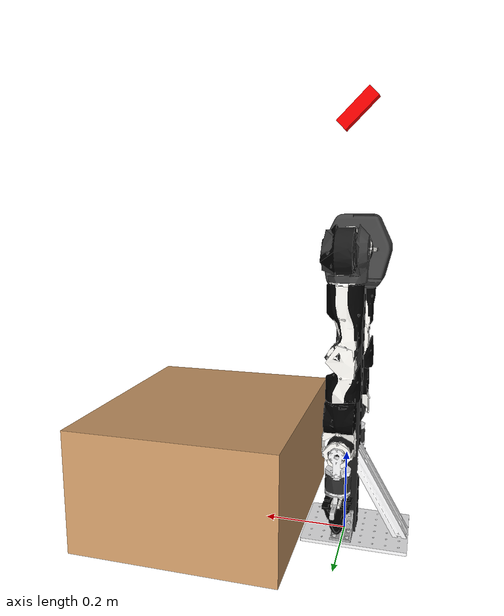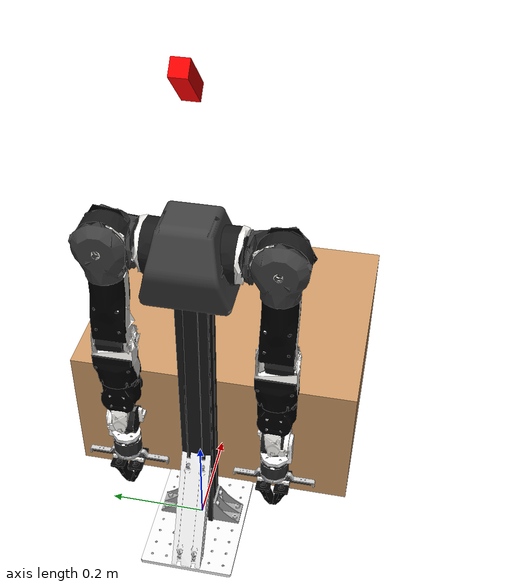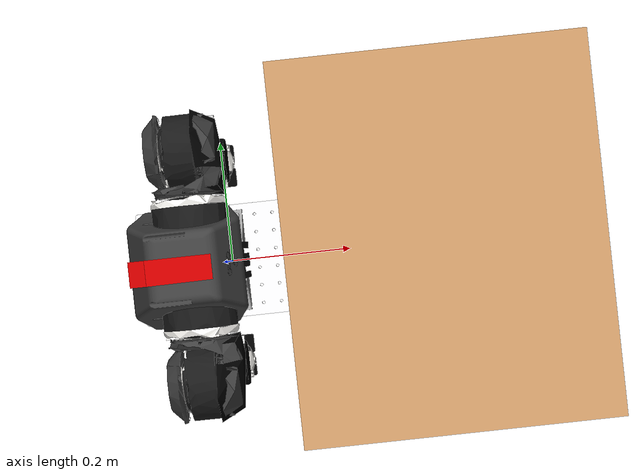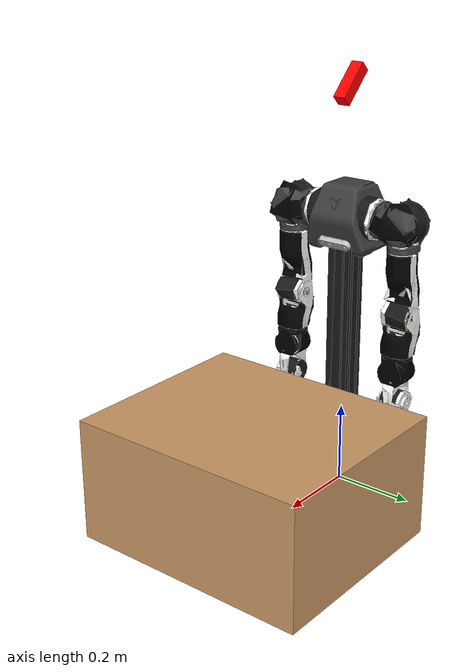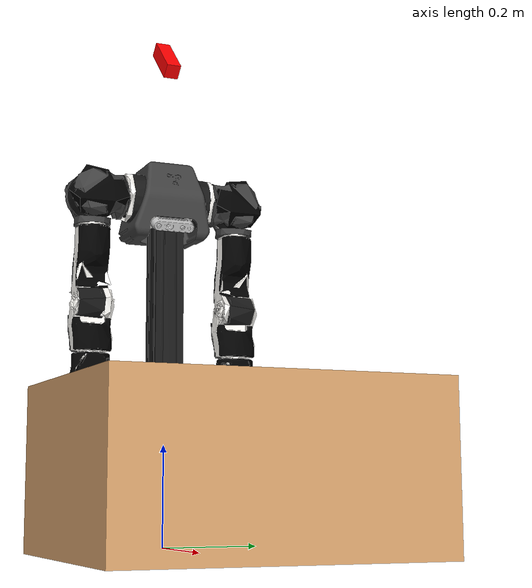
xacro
<?xml version="1.0"?>

<robot xmlns:xacro="http://www.ros.org/wiki/xacro" name="openarm">
    <!-- 1. 定义参数，防止宏调用时找不到参数报错 -->
    <xacro:arg name="initial_positions_file" default="initial_positions.yaml" />
    <!-- Import openarm urdf file -->
    <xacro:include filename="mujoco_openarm_bimanual_cam.urdf" />

    <!-- Import control_xacro -->
    <!-- 注意：这里包含了你定义的那个文件 -->
    <xacro:include filename="mujoco_ros2_control_position.xacro" />

    <link name="overhead_camera_link">
        <visual>
            <geometry>
                <box size="0.1 0.03 0.03"/>
            </geometry>
            <material name="black">
                <color rgba="255 0 0 1"/>
            </material>
        </visual>
        <collision>
            <geometry>
                <box size="0.1 0.03 0.03"/>
            </geometry>
        </collision>
    </link>

    <joint name="overhead_camera_joint" type="fixed">
        <parent link="world"/>
        <child link="overhead_camera_link"/>
        <!-- Position: 0.4m forward, 0.8m up. Facing down. -->
        <origin xyz="0 0 1.0" rpy="0 0.785 0"/>
    </joint>

    <mujoco>
        <sensor>
            <camera name="overhead_camera" mode="fixed" fovy="60" />
        </sensor>
    </mujoco>

    <!-- 2. 关键修复：显式调用宏 -->
    <!-- 宏的名字必须与 mujoco_ros2_control.xacro 中定义的 xacro:macro name="..." 一致 -->
    <!-- 定义是: openarm_mujoco_ros2_control -->
    <xacro:openarm_mujoco_ros2_control name="MujocoSystem" initial_positions_file="$(arg initial_positions_file)"/>

</robot>

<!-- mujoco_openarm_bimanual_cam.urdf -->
<!-- |    This document was autogenerated by xacro from ./urdf/robot/v10-D435.urdf.xacro | -->
<!-- |    EDITING THIS FILE BY HAND IS NOT RECOMMENDED                                 | -->
<robot name="openarm">
  <!-- 包含RealSense D435i的URDF模型（从realsense2_description包中） -->
  <!-- Is the robot being simulated in gazebo? -->
  <link name="world"/>
  <joint name="openarm_body_world_joint" type="fixed">
    <parent link="world"/>
    <child link="openarm_body_link0"/>
    <origin rpy="0 0 0" xyz="0 0 0"/>
  </joint>
  <link name="openarm_body_link0">
    <visual name="openarm_body_link0_visual">
      <origin rpy="0.0 0.0 0.0" xyz="0.0 0.0 0.0"/>
      <geometry>
        <mesh filename="package://openarm_description/meshes/body/v10/visual/body_link0.dae" scale="0.001 0.001 0.001"/>
      </geometry>
    </visual>
    <collision name="openarm_body_link0_collision">
      <origin rpy="0.0 0.0 0.0" xyz="0.0 0.0 0.0"/>
      <geometry>
        <mesh filename="package://openarm_description/meshes/body/v10/collision/body_link0_symp.stl" scale="0.001 0.001 0.001"/>
      </geometry>
    </collision>
    <inertial>
      <origin rpy="0.0 0.0 0.0" xyz="0.0 0.0 0.0"/>
      <mass value="13.89"/>
      <inertia ixx="1.653" ixy="0.0" ixz="0.0" iyy="1.653" iyz="0.0" izz="0.051"/>
    </inertial>
  </link>
  <joint name="openarm_left_openarm_body_link0_joint" type="fixed">
    <parent link="openarm_body_link0"/>
    <child link="openarm_left_link0"/>
    <origin rpy="-1.5708 0 0" xyz="0.0 0.031 0.698"/>
  </joint>
  <link name="openarm_left_link0">
    <visual name="openarm_left_link0_visual">
      <origin rpy="0.0 0.0 0.0" xyz="0.0 0.0 0.0"/>
      <geometry>
        <mesh filename="package://openarm_description/meshes/arm/v10/visual/link0.dae" scale="0.001 -0.001 0.001"/>
      </geometry>
    </visual>
    <collision name="openarm_left_link0_collision">
      <origin rpy="0.0 0.0 0.0" xyz="0.0 0.0 0.0"/>
      <geometry>
        <mesh filename="package://openarm_description/meshes/arm/v10/collision/link0_symp.stl" scale="0.001 -0.001 0.001"/>
      </geometry>
    </collision>
    <inertial>
      <origin rpy="0.0 0.0 0.0" xyz="-0.0009483362816297526 -0.0001580207020448382 0.03076860287587199"/>
      <mass value="1.1432284943239561"/>
      <inertia ixx="0.001128" ixy="-4e-06" ixz="-3.3e-05" iyy="0.000962" iyz="-7e-06" izz="0.00147"/>
    </inertial>
  </link>
  <link name="openarm_left_link1">
    <visual name="openarm_left_link1_visual">
      <origin rpy="0.0 0.0 0.0" xyz="-0.0 0.0 -0.0625"/>
      <geometry>
        <mesh filename="package://openarm_description/meshes/arm/v10/visual/link1.dae" scale="0.001 -0.001 0.001"/>
      </geometry>
    </visual>
    <collision name="openarm_left_link1_collision">
      <origin rpy="0.0 0.0 0.0" xyz="-0.0 0.0 -0.0625"/>
      <geometry>
        <mesh filename="package://openarm_description/meshes/arm/v10/collision/link1_symp.stl" scale="0.001 -0.001 0.001"/>
      </geometry>
    </collision>
    <inertial>
      <origin rpy="0.0 0.0 0.0" xyz="0.0011467657911800769 -3.319987657026362e-05 0.05395284380736254"/>
      <mass value="1.1416684646202298"/>
      <inertia ixx="0.001567" ixy="-1e-06" ixz="-2.9e-05" iyy="0.001273" iyz="1e-06" izz="0.001016"/>
    </inertial>
  </link>
  <joint name="openarm_left_joint1" type="revolute">
    <origin rpy="0 0 0" xyz="0.0 0.0 0.0625"/>
    <parent link="openarm_left_link0"/>
    <child link="openarm_left_link1"/>
    <axis xyz="0 0 1"/>
    <limit effort="40" lower="-3.490659" upper="1.3962629999999998" velocity="16.754666"/>
  </joint>
  <link name="openarm_left_link2">
    <visual name="openarm_left_link2_visual">
      <origin rpy="0.0 0.0 0.0" xyz="0.0301 0.0 -0.1225"/>
      <geometry>
        <mesh filename="package://openarm_description/meshes/arm/v10/visual/link2.dae" scale="0.001 -0.001 0.001"/>
      </geometry>
    </visual>
    <collision name="openarm_left_link2_collision">
      <origin rpy="0.0 0.0 0.0" xyz="0.0301 0.0 -0.1225"/>
      <geometry>
        <mesh filename="package://openarm_description/meshes/arm/v10/collision/link2_symp.stl" scale="0.001 -0.001 0.001"/>
      </geometry>
    </collision>
    <inertial>
      <origin rpy="0.0 0.0 0.0" xyz="0.00839629182351943 2.0145102027597523e-08 0.03256649300522363"/>
      <mass value="0.2775092746011571"/>
      <inertia ixx="0.000359" ixy="1e-06" ixz="-0.000109" iyy="0.000376" iyz="1e-06" izz="0.000232"/>
    </inertial>
  </link>
  <joint name="openarm_left_joint2" type="revolute">
    <origin rpy="-1.57079632679 0 0" xyz="-0.0301 0.0 0.06"/>
    <parent link="openarm_left_link1"/>
    <child link="openarm_left_link2"/>
    <axis xyz="-1 0 0"/>
    <limit effort="40" lower="-3.3161253267948965" upper="0.17453267320510335" velocity="16.754666"/>
  </joint>
  <link name="openarm_left_link3">
    <visual name="openarm_left_link3_visual">
      <origin rpy="0.0 0.0 0.0" xyz="-0.0 -0.0 -0.18875"/>
      <geometry>
        <mesh filename="package://openarm_description/meshes/arm/v10/visual/link3.dae" scale="0.001 -0.001 0.001"/>
      </geometry>
    </visual>
    <collision name="openarm_left_link3_collision">
      <origin rpy="0.0 0.0 0.0" xyz="-0.0 -0.0 -0.18875"/>
      <geometry>
        <mesh filename="package://openarm_description/meshes/arm/v10/collision/link3_symp.stl" scale="0.001 -0.001 0.001"/>
      </geometry>
    </collision>
    <inertial>
      <origin rpy="0.0 0.0 0.0" xyz="-0.002104752099628911 -0.0005549085042607548 0.09047470545721961"/>
      <mass value="1.073863338202347"/>
      <inertia ixx="0.004372" ixy="1e-06" ixz="1.1e-05" iyy="0.004319" iyz="-3.6e-05" izz="0.000661"/>
    </inertial>
  </link>
  <joint name="openarm_left_joint3" type="revolute">
    <origin rpy="0 0 0" xyz="0.0301 0.0 0.06625"/>
    <parent link="openarm_left_link2"/>
    <child link="openarm_left_link3"/>
    <axis xyz="0 0 1"/>
    <limit effort="27" lower="-1.570796" upper="1.570796" velocity="5.445426"/>
  </joint>
  <link name="openarm_left_link4">
    <visual name="openarm_left_link4_visual">
      <origin rpy="0.0 0.0 0.0" xyz="0.0 -0.0315 -0.3425"/>
      <geometry>
        <mesh filename="package://openarm_description/meshes/arm/v10/visual/link4.dae" scale="0.001 0.001 0.001"/>
      </geometry>
    </visual>
    <collision name="openarm_left_link4_collision">
      <origin rpy="0.0 0.0 0.0" xyz="0.0 -0.0315 -0.3425"/>
      <geometry>
        <mesh filename="package://openarm_description/meshes/arm/v10/collision/link4_symp.stl" scale="0.001 0.001 0.001"/>
      </geometry>
    </collision>
    <inertial>
      <origin rpy="0.0 0.0 0.0" xyz="-0.0029006831074562967 -0.03030575826634669 0.06339637422196209"/>
      <mass value="0.6348534566833373"/>
      <inertia ixx="0.000623" ixy="-1e-06" ixz="-1.9e-05" iyy="0.000511" iyz="3.8e-05" izz="0.000334"/>
    </inertial>
  </link>
  <joint name="openarm_left_joint4" type="revolute">
    <origin rpy="0 0 0" xyz="-0.0 0.0315 0.15375"/>
    <parent link="openarm_left_link3"/>
    <child link="openarm_left_link4"/>
    <axis xyz="0 1 0"/>
    <limit effort="27" lower="0.0" upper="2.443461" velocity="5.445426"/>
  </joint>
  <link name="openarm_left_link5">
    <visual name="openarm_left_link5_visual">
      <origin rpy="0.0 0.0 0.0" xyz="-0.0 -0.0 -0.438"/>
      <geometry>
        <mesh filename="package://openarm_description/meshes/arm/v10/visual/link5.dae" scale="0.001 -0.001 0.001"/>
      </geometry>
    </visual>
    <collision name="openarm_left_link5_collision">
      <origin rpy="0.0 0.0 0.0" xyz="-0.0 -0.0 -0.438"/>
      <geometry>
        <mesh filename="package://openarm_description/meshes/arm/v10/collision/link5_symp.stl" scale="0.001 -0.001 0.001"/>
      </geometry>
    </collision>
    <inertial>
      <origin rpy="0.0 0.0 0.0" xyz="-0.003049665024221911 -0.0008866902457326625 0.043079803024980934"/>
      <mass value="0.6156588026168502"/>
      <inertia ixx="0.000423" ixy="-8e-06" ixz="6e-06" iyy="0.000445" iyz="-6e-06" izz="0.000324"/>
    </inertial>
  </link>
  <joint name="openarm_left_joint5" type="revolute">
    <origin rpy="0 0 0" xyz="0.0 -0.0315 0.0955"/>
    <parent link="openarm_left_link4"/>
    <child link="openarm_left_link5"/>
    <axis xyz="0 0 1"/>
    <limit effort="7" lower="-1.570796" upper="1.570796" velocity="20.943946"/>
  </joint>
  <link name="openarm_left_link6">
    <visual name="openarm_left_link6_visual">
      <origin rpy="0.0 0.0 0.0" xyz="-0.0375 -0.0 -0.5585"/>
      <geometry>
        <mesh filename="package://openarm_description/meshes/arm/v10/visual/link6.dae" scale="0.001 -0.001 0.001"/>
      </geometry>
    </visual>
    <collision name="openarm_left_link6_collision">
      <origin rpy="0.0 0.0 0.0" xyz="-0.0375 -0.0 -0.5585"/>
      <geometry>
        <mesh filename="package://openarm_description/meshes/arm/v10/collision/link6_symp.stl" scale="0.001 -0.001 0.001"/>
      </geometry>
    </collision>
    <inertial>
      <origin rpy="0.0 0.0 0.0" xyz="-0.037136587005447405 -0.00033230528343419053 -9.498374522309838e-05"/>
      <mass value="0.475202773187987"/>
      <inertia ixx="0.000143" ixy="1e-06" ixz="1e-06" iyy="0.000157" iyz="1e-06" izz="0.000159"/>
    </inertial>
  </link>
  <joint name="openarm_left_joint6" type="revolute">
    <origin rpy="0 0 0" xyz="0.0375 0.0 0.1205"/>
    <parent link="openarm_left_link5"/>
    <child link="openarm_left_link6"/>
    <axis xyz="1 0 0"/>
    <limit effort="7" lower="-0.785398" upper="0.785398" velocity="20.943946"/>
  </joint>
  <link name="openarm_left_link7">
    <visual name="openarm_left_link7_visual">
      <origin rpy="0.0 0.0 0.0" xyz="0.0 -0.0 -0.5585"/>
      <geometry>
        <mesh filename="package://openarm_description/meshes/arm/v10/visual/link7.dae" scale="0.001 -0.001 0.001"/>
      </geometry>
    </visual>
    <collision name="openarm_left_link7_collision">
      <origin rpy="0.0 0.0 0.0" xyz="0.0 -0.0 -0.5585"/>
      <geometry>
        <mesh filename="package://openarm_description/meshes/arm/v10/collision/link7_symp.stl" scale="0.001 -0.001 0.001"/>
      </geometry>
    </collision>
    <inertial>
      <origin rpy="0.0 0.0 0.0" xyz="6.875510271106056e-05 -0.01266175250761268 0.06951945409987448"/>
      <mass value="0.4659771327380578"/>
      <inertia ixx="0.000639" ixy="1e-06" ixz="1e-06" iyy="0.000497" iyz="8.9e-05" izz="0.000342"/>
    </inertial>
  </link>
  <joint name="openarm_left_joint7" type="revolute">
    <origin rpy="0 0 0" xyz="-0.0375 0.0 0.0"/>
    <parent link="openarm_left_link6"/>
    <child link="openarm_left_link7"/>
    <axis xyz="0 -1 0"/>
    <limit effort="7" lower="-1.570796" upper="1.570796" velocity="20.943946"/>
  </joint>
  <joint name="openarm_right_openarm_body_link0_joint" type="fixed">
    <parent link="openarm_body_link0"/>
    <child link="openarm_right_link0"/>
    <origin rpy="1.5708 0 0" xyz="0.0 -0.031 0.698"/>
  </joint>
  <link name="openarm_right_link0">
    <visual name="openarm_right_link0_visual">
      <origin rpy="0.0 0.0 0.0" xyz="0.0 0.0 0.0"/>
      <geometry>
        <mesh filename="package://openarm_description/meshes/arm/v10/visual/link0.dae" scale="0.001 0.001 0.001"/>
      </geometry>
    </visual>
    <collision name="openarm_right_link0_collision">
      <origin rpy="0.0 0.0 0.0" xyz="0.0 0.0 0.0"/>
      <geometry>
        <mesh filename="package://openarm_description/meshes/arm/v10/collision/link0_symp.stl" scale="0.001 0.001 0.001"/>
      </geometry>
    </collision>
    <inertial>
      <origin rpy="0.0 0.0 0.0" xyz="-0.0009483362816297526 0.0001580207020448382 0.03076860287587199"/>
      <mass value="1.1432284943239561"/>
      <inertia ixx="0.001128" ixy="-4e-06" ixz="-3.3e-05" iyy="0.000962" iyz="-7e-06" izz="0.00147"/>
    </inertial>
  </link>
  <link name="openarm_right_link1">
    <visual name="openarm_right_link1_visual">
      <origin rpy="0.0 0.0 0.0" xyz="-0.0 0.0 -0.0625"/>
      <geometry>
        <mesh filename="package://openarm_description/meshes/arm/v10/visual/link1.dae" scale="0.001 0.001 0.001"/>
      </geometry>
    </visual>
    <collision name="openarm_right_link1_collision">
      <origin rpy="0.0 0.0 0.0" xyz="-0.0 0.0 -0.0625"/>
      <geometry>
        <mesh filename="package://openarm_description/meshes/arm/v10/collision/link1_symp.stl" scale="0.001 0.001 0.001"/>
      </geometry>
    </collision>
    <inertial>
      <origin rpy="0.0 0.0 0.0" xyz="0.0011467657911800769 3.319987657026362e-05 0.05395284380736254"/>
      <mass value="1.1416684646202298"/>
      <inertia ixx="0.001567" ixy="-1e-06" ixz="-2.9e-05" iyy="0.001273" iyz="1e-06" izz="0.001016"/>
    </inertial>
  </link>
  <joint name="openarm_right_joint1" type="revolute">
    <origin rpy="0 0 0" xyz="0.0 0.0 0.0625"/>
    <parent link="openarm_right_link0"/>
    <child link="openarm_right_link1"/>
    <axis xyz="0 0 1"/>
    <limit effort="40" lower="-1.396263" upper="3.490659" velocity="16.754666"/>
  </joint>
  <link name="openarm_right_link2">
    <visual name="openarm_right_link2_visual">
      <origin rpy="0.0 0.0 0.0" xyz="0.0301 0.0 -0.1225"/>
      <geometry>
        <mesh filename="package://openarm_description/meshes/arm/v10/visual/link2.dae" scale="0.001 0.001 0.001"/>
      </geometry>
    </visual>
    <collision name="openarm_right_link2_collision">
      <origin rpy="0.0 0.0 0.0" xyz="0.0301 0.0 -0.1225"/>
      <geometry>
        <mesh filename="package://openarm_description/meshes/arm/v10/collision/link2_symp.stl" scale="0.001 0.001 0.001"/>
      </geometry>
    </collision>
    <inertial>
      <origin rpy="0.0 0.0 0.0" xyz="0.00839629182351943 -2.0145102027597523e-08 0.03256649300522363"/>
      <mass value="0.2775092746011571"/>
      <inertia ixx="0.000359" ixy="1e-06" ixz="-0.000109" iyy="0.000376" iyz="1e-06" izz="0.000232"/>
    </inertial>
  </link>
  <joint name="openarm_right_joint2" type="revolute">
    <origin rpy="1.57079632679 0 0" xyz="-0.0301 0.0 0.06"/>
    <parent link="openarm_right_link1"/>
    <child link="openarm_right_link2"/>
    <axis xyz="-1 0 0"/>
    <limit effort="40" lower="-0.17453267320510335" upper="3.3161253267948965" velocity="16.754666"/>
  </joint>
  <link name="openarm_right_link3">
    <visual name="openarm_right_link3_visual">
      <origin rpy="0.0 0.0 0.0" xyz="-0.0 -0.0 -0.18875"/>
      <geometry>
        <mesh filename="package://openarm_description/meshes/arm/v10/visual/link3.dae" scale="0.001 0.001 0.001"/>
      </geometry>
    </visual>
    <collision name="openarm_right_link3_collision">
      <origin rpy="0.0 0.0 0.0" xyz="-0.0 -0.0 -0.18875"/>
      <geometry>
        <mesh filename="package://openarm_description/meshes/arm/v10/collision/link3_symp.stl" scale="0.001 0.001 0.001"/>
      </geometry>
    </collision>
    <inertial>
      <origin rpy="0.0 0.0 0.0" xyz="-0.002104752099628911 0.0005549085042607548 0.09047470545721961"/>
      <mass value="1.073863338202347"/>
      <inertia ixx="0.004372" ixy="1e-06" ixz="1.1e-05" iyy="0.004319" iyz="-3.6e-05" izz="0.000661"/>
    </inertial>
  </link>
  <joint name="openarm_right_joint3" type="revolute">
    <origin rpy="0 0 0" xyz="0.0301 0.0 0.06625"/>
    <parent link="openarm_right_link2"/>
    <child link="openarm_right_link3"/>
    <axis xyz="0 0 1"/>
    <limit effort="27" lower="-1.570796" upper="1.570796" velocity="5.445426"/>
  </joint>
  <link name="openarm_right_link4">
    <visual name="openarm_right_link4_visual">
      <origin rpy="0.0 0.0 0.0" xyz="0.0 -0.0315 -0.3425"/>
      <geometry>
        <mesh filename="package://openarm_description/meshes/arm/v10/visual/link4.dae" scale="0.001 0.001 0.001"/>
      </geometry>
    </visual>
    <collision name="openarm_right_link4_collision">
      <origin rpy="0.0 0.0 0.0" xyz="0.0 -0.0315 -0.3425"/>
      <geometry>
        <mesh filename="package://openarm_description/meshes/arm/v10/collision/link4_symp.stl" scale="0.001 0.001 0.001"/>
      </geometry>
    </collision>
    <inertial>
      <origin rpy="0.0 0.0 0.0" xyz="-0.0029006831074562967 -0.03030575826634669 0.06339637422196209"/>
      <mass value="0.6348534566833373"/>
      <inertia ixx="0.000623" ixy="-1e-06" ixz="-1.9e-05" iyy="0.000511" iyz="3.8e-05" izz="0.000334"/>
    </inertial>
  </link>
  <joint name="openarm_right_joint4" type="revolute">
    <origin rpy="0 0 0" xyz="-0.0 0.0315 0.15375"/>
    <parent link="openarm_right_link3"/>
    <child link="openarm_right_link4"/>
    <axis xyz="0 1 0"/>
    <limit effort="27" lower="0.0" upper="2.443461" velocity="5.445426"/>
  </joint>
  <link name="openarm_right_link5">
    <visual name="openarm_right_link5_visual">
      <origin rpy="0.0 0.0 0.0" xyz="-0.0 -0.0 -0.438"/>
      <geometry>
        <mesh filename="package://openarm_description/meshes/arm/v10/visual/link5.dae" scale="0.001 0.001 0.001"/>
      </geometry>
    </visual>
    <collision name="openarm_right_link5_collision">
      <origin rpy="0.0 0.0 0.0" xyz="-0.0 -0.0 -0.438"/>
      <geometry>
        <mesh filename="package://openarm_description/meshes/arm/v10/collision/link5_symp.stl" scale="0.001 0.001 0.001"/>
      </geometry>
    </collision>
    <inertial>
      <origin rpy="0.0 0.0 0.0" xyz="-0.003049665024221911 0.0008866902457326625 0.043079803024980934"/>
      <mass value="0.6156588026168502"/>
      <inertia ixx="0.000423" ixy="-8e-06" ixz="6e-06" iyy="0.000445" iyz="-6e-06" izz="0.000324"/>
    </inertial>
  </link>
  <joint name="openarm_right_joint5" type="revolute">
    <origin rpy="0 0 0" xyz="0.0 -0.0315 0.0955"/>
    <parent link="openarm_right_link4"/>
    <child link="openarm_right_link5"/>
    <axis xyz="0 0 1"/>
    <limit effort="7" lower="-1.570796" upper="1.570796" velocity="20.943946"/>
  </joint>
  <link name="openarm_right_link6">
    <visual name="openarm_right_link6_visual">
      <origin rpy="0.0 0.0 0.0" xyz="-0.0375 -0.0 -0.5585"/>
      <geometry>
        <mesh filename="package://openarm_description/meshes/arm/v10/visual/link6.dae" scale="0.001 0.001 0.001"/>
      </geometry>
    </visual>
    <collision name="openarm_right_link6_collision">
      <origin rpy="0.0 0.0 0.0" xyz="-0.0375 -0.0 -0.5585"/>
      <geometry>
        <mesh filename="package://openarm_description/meshes/arm/v10/collision/link6_symp.stl" scale="0.001 0.001 0.001"/>
      </geometry>
    </collision>
    <inertial>
      <origin rpy="0.0 0.0 0.0" xyz="-0.037136587005447405 0.00033230528343419053 -9.498374522309838e-05"/>
      <mass value="0.475202773187987"/>
      <inertia ixx="0.000143" ixy="1e-06" ixz="1e-06" iyy="0.000157" iyz="1e-06" izz="0.000159"/>
    </inertial>
  </link>
  <joint name="openarm_right_joint6" type="revolute">
    <origin rpy="0 0 0" xyz="0.0375 0.0 0.1205"/>
    <parent link="openarm_right_link5"/>
    <child link="openarm_right_link6"/>
    <axis xyz="1 0 0"/>
    <limit effort="7" lower="-0.785398" upper="0.785398" velocity="20.943946"/>
  </joint>
  <link name="openarm_right_link7">
    <visual name="openarm_right_link7_visual">
      <origin rpy="0.0 0.0 0.0" xyz="0.0 -0.0 -0.5585"/>
      <geometry>
        <mesh filename="package://openarm_description/meshes/arm/v10/visual/link7.dae" scale="0.001 0.001 0.001"/>
      </geometry>
    </visual>
    <collision name="openarm_right_link7_collision">
      <origin rpy="0.0 0.0 0.0" xyz="0.0 -0.0 -0.5585"/>
      <geometry>
        <mesh filename="package://openarm_description/meshes/arm/v10/collision/link7_symp.stl" scale="0.001 0.001 0.001"/>
      </geometry>
    </collision>
    <inertial>
      <origin rpy="0.0 0.0 0.0" xyz="6.875510271106056e-05 0.01266175250761268 0.06951945409987448"/>
      <mass value="0.4659771327380578"/>
      <inertia ixx="0.000639" ixy="1e-06" ixz="1e-06" iyy="0.000497" iyz="8.9e-05" izz="0.000342"/>
    </inertial>
  </link>
  <joint name="openarm_right_joint7" type="revolute">
    <origin rpy="0 0 0" xyz="-0.0375 0.0 0.0"/>
    <parent link="openarm_right_link6"/>
    <child link="openarm_right_link7"/>
    <axis xyz="0 1 0"/>
    <limit effort="7" lower="-1.570796" upper="1.570796" velocity="20.943946"/>
  </joint>
  <link name="openarm_left_hand">
    <visual name="openarm_left_hand_visual">
      <origin rpy="0.0 0.0 0.0" xyz="0.0 0.0 -0.6585"/>
      <geometry>
        <mesh filename="package://openarm_description/meshes/ee/openarm_hand/visual/hand.dae" scale="0.001 0.001 0.001"/>
      </geometry>
    </visual>
    <collision name="openarm_left_hand_collision">
      <origin rpy="0.0 0.0 0.0" xyz="0.0 0.0 -0.6585"/>
      <geometry>
        <mesh filename="package://openarm_description/meshes/ee/openarm_hand/collision/hand.stl" scale="0.001 0.001 0.001"/>
      </geometry>
    </collision>
    <inertial>
      <origin rpy="0 0 0" xyz="0.0 0.002 0.03"/>
      <mass value="0.35"/>
      <inertia ixx="0.0002473" ixy="1e-06" ixz="1e-06" iyy="1.763e-05" iyz="1e-06" izz="0.0002521"/>
    </inertial>
  </link>
  <joint name="left_openarm_hand_joint" type="fixed">
    <parent link="openarm_left_link7"/>
    <child link="openarm_left_hand"/>
    <origin rpy="0 0 0" xyz="0 -0.0 0.1001"/>
  </joint>
  <!-- Define the hand_tcp frame -->
  <link name="openarm_left_hand_tcp"/>
  <joint name="openarm_left_hand_tcp_joint" type="fixed">
    <origin rpy="0 0 0" xyz="0 -0.0 0.08"/>
    <parent link="openarm_left_hand"/>
    <child link="openarm_left_hand_tcp"/>
  </joint>
  <link name="openarm_left_left_finger">
    <visual name="openarm_left_left_finger_visual">
      <origin rpy="0.0 0.0 0.0" xyz="0.0 -0.05 -0.673001"/>
      <geometry>
        <mesh filename="package://openarm_description/meshes/ee/openarm_hand/visual/finger.dae" scale="0.001 0.001 0.001"/>
      </geometry>
    </visual>
    <collision name="openarm_left_left_finger_collision">
      <origin rpy="0.0 0.0 0.0" xyz="0.0 -0.05 -0.673001"/>
      <geometry>
        <mesh filename="package://openarm_description/meshes/ee/openarm_hand/collision/finger.stl" scale="0.001 0.001 0.001"/>
      </geometry>
    </collision>
    <inertial>
      <origin rpy="0 0 0" xyz="0.0064528 0.01702 0.0219685"/>
      <mass value="0.03602545343277134"/>
      <inertia ixx="2.3749999999999998e-05" ixy="0.0" ixz="0.0" iyy="2.3749999999999998e-05" iyz="0.0" izz="7.5e-06"/>
    </inertial>
  </link>
  <link name="openarm_left_right_finger">
    <visual name="openarm_left_right_finger_visual">
      <origin rpy="0.0 0.0 0.0" xyz="0.0 0.05 -0.673001"/>
      <geometry>
        <mesh filename="package://openarm_description/meshes/ee/openarm_hand/visual/finger.dae" scale="0.001 -0.001 0.001"/>
      </geometry>
    </visual>
    <collision name="openarm_left_right_finger_collision">
      <origin rpy="0.0 0.0 0.0" xyz="0.0 0.05 -0.673001"/>
      <geometry>
        <mesh filename="package://openarm_description/meshes/ee/openarm_hand/collision/finger.stl" scale="0.001 -0.001 0.001"/>
      </geometry>
    </collision>
    <inertial>
      <origin rpy="0 0 0" xyz="0.0064528 -0.01702 0.0219685"/>
      <mass value="0.03602545343277134"/>
      <inertia ixx="2.3749999999999998e-05" ixy="0.0" ixz="0.0" iyy="2.3749999999999998e-05" iyz="0.0" izz="7.5e-06"/>
    </inertial>
  </link>
  <joint name="openarm_left_finger_joint1" type="prismatic">
    <parent link="openarm_left_hand"/>
    <child link="openarm_left_right_finger"/>
    <origin rpy="0 0 0" xyz="0 -0.006 0.015"/>
    <axis xyz="0 -1 0"/>
    <limit effort="333" lower="0.0" upper="0.044" velocity="10.0"/>
  </joint>
  <joint name="openarm_left_finger_joint2" type="prismatic">
    <parent link="openarm_left_hand"/>
    <child link="openarm_left_left_finger"/>
    <origin rpy="0 0 0" xyz="0 0.006 0.015"/>
    <axis xyz="0 1 0"/>
    <limit effort="333" lower="0.0" upper="0.044" velocity="10.0"/>
    <mimic joint="openarm_left_finger_joint1"/>
  </joint>
  <link name="openarm_right_hand">
    <visual name="openarm_right_hand_visual">
      <origin rpy="0.0 0.0 0.0" xyz="0.0 0.0 -0.6585"/>
      <geometry>
        <mesh filename="package://openarm_description/meshes/ee/openarm_hand/visual/hand.dae" scale="0.001 0.001 0.001"/>
      </geometry>
    </visual>
    <collision name="openarm_right_hand_collision">
      <origin rpy="0.0 0.0 0.0" xyz="0.0 0.0 -0.6585"/>
      <geometry>
        <mesh filename="package://openarm_description/meshes/ee/openarm_hand/collision/hand.stl" scale="0.001 0.001 0.001"/>
      </geometry>
    </collision>
    <inertial>
      <origin rpy="0 0 0" xyz="0.0 0.002 0.03"/>
      <mass value="0.35"/>
      <inertia ixx="0.0002473" ixy="1e-06" ixz="1e-06" iyy="1.763e-05" iyz="1e-06" izz="0.0002521"/>
    </inertial>
  </link>
  <joint name="right_openarm_hand_joint" type="fixed">
    <parent link="openarm_right_link7"/>
    <child link="openarm_right_hand"/>
    <origin rpy="0 0 0" xyz="0 -0.0 0.1001"/>
  </joint>
  <!-- Define the hand_tcp frame -->
  <link name="openarm_right_hand_tcp"/>
  <joint name="openarm_right_hand_tcp_joint" type="fixed">
    <origin rpy="0 0 0" xyz="0 -0.0 0.08"/>
    <parent link="openarm_right_hand"/>
    <child link="openarm_right_hand_tcp"/>
  </joint>
  <link name="openarm_right_left_finger">
    <visual name="openarm_right_left_finger_visual">
      <origin rpy="0.0 0.0 0.0" xyz="0.0 -0.05 -0.673001"/>
      <geometry>
        <mesh filename="package://openarm_description/meshes/ee/openarm_hand/visual/finger.dae" scale="0.001 0.001 0.001"/>
      </geometry>
    </visual>
    <collision name="openarm_right_left_finger_collision">
      <origin rpy="0.0 0.0 0.0" xyz="0.0 -0.05 -0.673001"/>
      <geometry>
        <mesh filename="package://openarm_description/meshes/ee/openarm_hand/collision/finger.stl" scale="0.001 0.001 0.001"/>
      </geometry>
    </collision>
    <inertial>
      <origin rpy="0 0 0" xyz="0.0064528 0.01702 0.0219685"/>
      <mass value="0.03602545343277134"/>
      <inertia ixx="2.3749999999999998e-05" ixy="0.0" ixz="0.0" iyy="2.3749999999999998e-05" iyz="0.0" izz="7.5e-06"/>
    </inertial>
  </link>
  <link name="openarm_right_right_finger">
    <visual name="openarm_right_right_finger_visual">
      <origin rpy="0.0 0.0 0.0" xyz="0.0 0.05 -0.673001"/>
      <geometry>
        <mesh filename="package://openarm_description/meshes/ee/openarm_hand/visual/finger.dae" scale="0.001 -0.001 0.001"/>
      </geometry>
    </visual>
    <collision name="openarm_right_right_finger_collision">
      <origin rpy="0.0 0.0 0.0" xyz="0.0 0.05 -0.673001"/>
      <geometry>
        <mesh filename="package://openarm_description/meshes/ee/openarm_hand/collision/finger.stl" scale="0.001 -0.001 0.001"/>
      </geometry>
    </collision>
    <inertial>
      <origin rpy="0 0 0" xyz="0.0064528 -0.01702 0.0219685"/>
      <mass value="0.03602545343277134"/>
      <inertia ixx="2.3749999999999998e-05" ixy="0.0" ixz="0.0" iyy="2.3749999999999998e-05" iyz="0.0" izz="7.5e-06"/>
    </inertial>
  </link>
  <joint name="openarm_right_finger_joint1" type="prismatic">
    <parent link="openarm_right_hand"/>
    <child link="openarm_right_right_finger"/>
    <origin rpy="0 0 0" xyz="0 -0.006 0.015"/>
    <axis xyz="0 -1 0"/>
    <limit effort="333" lower="0.0" upper="0.044" velocity="10.0"/>
  </joint>
  <joint name="openarm_right_finger_joint2" type="prismatic">
    <parent link="openarm_right_hand"/>
    <child link="openarm_right_left_finger"/>
    <origin rpy="0 0 0" xyz="0 0.006 0.015"/>
    <axis xyz="0 1 0"/>
    <limit effort="333" lower="0.0" upper="0.044" velocity="10.0"/>
    <mimic joint="openarm_right_finger_joint1"/>
  </joint>
  <material name="aluminum">
    <color rgba="0.5 0.5 0.5 1"/>
  </material>
  <material name="plastic">
    <color rgba="0.1 0.1 0.1 1"/>
  </material>
  <!-- camera body, with origin at bottom screw mount -->
  <joint name="camera_joint" type="fixed">
    <origin rpy="0 0.5235988 0" xyz="0.035 0 0.63"/>
    <parent link="openarm_body_link0"/>
    <child link="camera_bottom_screw_frame"/>
  </joint>
  <link name="camera_bottom_screw_frame"/>
  <joint name="camera_link_joint" type="fixed">
    <origin rpy="0 0 0" xyz="0.010600000000000002 0.0175 0.0125"/>
    <parent link="camera_bottom_screw_frame"/>
    <child link="camera_link"/>
  </joint>
  <link name="camera_link">
    <visual>
      <!-- the mesh origin is at front plate in between the two infrared camera axes -->
      <origin rpy="1.5707963267948966 0 1.5707963267948966" xyz="0.0043 -0.0175 0"/>
      <geometry>
        <mesh filename="package://openarm_description/meshes/cam/d435.dae"/>
      </geometry>
    </visual>
    <collision>
      <origin rpy="0 0 0" xyz="0 -0.0175 0"/>
      <geometry>
        <box size="0.02505 0.09 0.025"/>
      </geometry>
    </collision>
    <inertial>
      <!-- The following are not reliable values, and should not be used for modeling -->
      <mass value="0.072"/>
      <origin xyz="0 0 0"/>
      <inertia ixx="0.003881243" ixy="0.0" ixz="0.0" iyy="0.000498940" iyz="0.0" izz="0.003879257"/>
    </inertial>
  </link>
  <link name="table">
        <visual>
            <origin xyz="0 0 0.15"/>   <!-- 几何中心放在 10 cm 处，总高 20 cm -->
            <geometry>
                <box size="0.5 0.6 0.3"/>   <!-- 长 50 cm、宽 60 cm、高 30 cm -->
            </geometry>
            <material name="table_color">
                <color rgba="0.8 0.6 0.4 1"/>
            </material>
        </visual>
        <collision>
            <origin xyz="0 0 0.15"/>
            <geometry>
                <box size="0.5 0.6 0.3"/>
            </geometry>
        </collision>
        <inertial>
            <origin xyz="0 0 0.15"/>
            <mass value="5"/>
            <inertia ixx="0.05" ixy="0" ixz="0"
                    iyy="0.05" iyz="0"
                    izz="0.05"/>
        </inertial>
    </link>

    <!-- 把桌子固接到 world，桌面离地 0.2 m -->
    <joint name="table_to_world" type="fixed">
        <parent link="world"/>
        <child  link="table"/>
        <origin xyz="0.35 0 0.0" rpy="0 0 0"/>
    </joint>
</robot>
